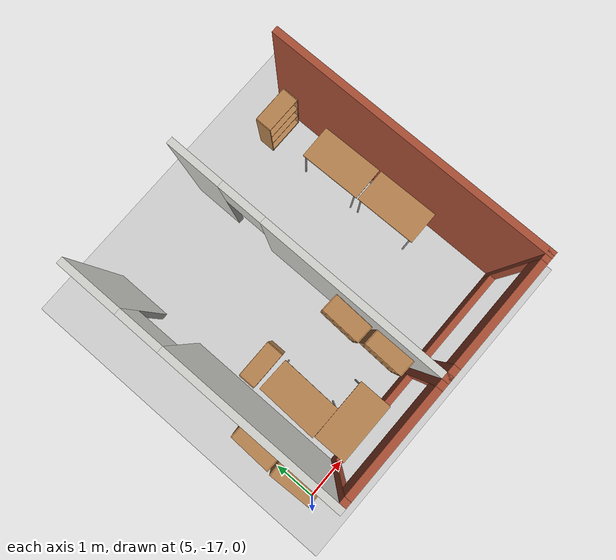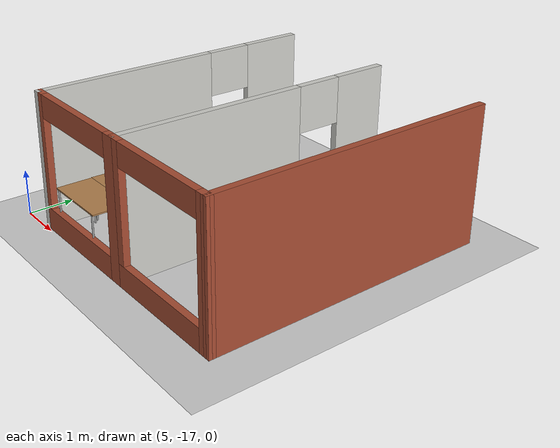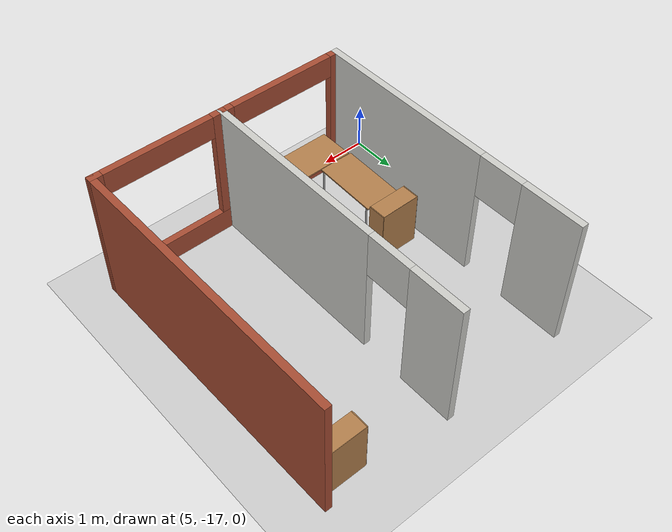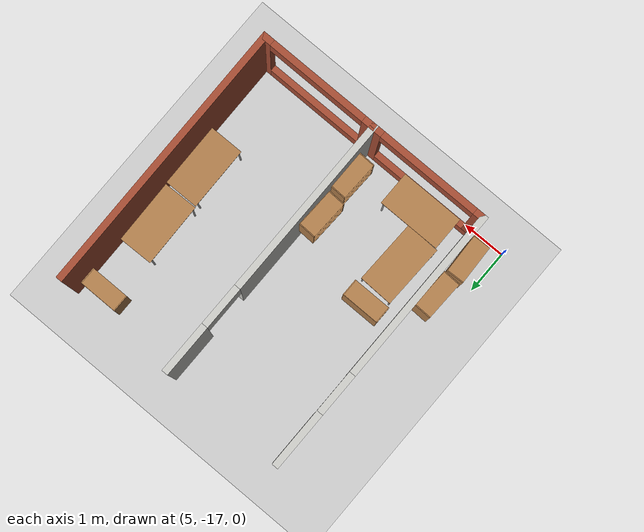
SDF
<sdf version="1.7">
 <world name="default">
  <model name="ground_plane">
   <static>1</static>
   <link name="link">
    <collision name="collision">
     <geometry><plane><normal>0 0 1</normal><size>100 100</size></plane></geometry>
     <surface><friction><ode><mu>100</mu><mu2>50</mu2></ode></friction></surface>
    </collision>
    <visual name="visual">
     <cast_shadows>0</cast_shadows>
     <geometry><plane><normal>0 0 1</normal><size>100 100</size></plane></geometry>
     <material>
      <script><uri>file://media/materials/scripts/gazebo.material</uri><name>Gazebo/Grey</name></script>
     </material>
    </visual>
   </link>
  </model>
  <model name="laboratory_world">
   <pose>0.94037 -7.07852 0 0 -0 0</pose>
   <link name="Wall_26">
    <collision name="Wall_26_Collision">
     <geometry><box><size>6.45317 0.15 3</size></box></geometry>
     <pose>0 0 1.5 0 -0 0</pose>
    </collision>
    <visual name="Wall_26_Visual">
     <pose>0 0 1.5 0 -0 0</pose>
     <geometry><box><size>6.45317 0.15 3</size></box></geometry>
     <material>
      <script><uri>file://media/materials/scripts/gazebo.material</uri><name>Gazebo/Bricks</name></script>
      <ambient>0.760784 0.662745 0.627451 1</ambient>
     </material>
     <meta><layer>0</layer></meta>
    </visual>
    <pose>10.5497 -6.647 0 0 -0 -1.56334</pose>
   </link>
   <link name="Wall_29">
    <pose>9.14822 -9.7985 0 0 -0 3.14159</pose>
    <visual name="Wall_29_Visual_0">
     <pose>-1.36291 0 1.5 0 -0 0</pose>
     <geometry><box><size>0.274173 0.15 3</size></box></geometry>
     <material>
      <script><uri>file://media/materials/scripts/gazebo.material</uri><name>Gazebo/Bricks</name></script>
      <ambient>0.760784 0.662745 0.627451 1</ambient>
     </material>
     <meta><layer>0</layer></meta>
    </visual>
    <collision name="Wall_29_Collision_0">
     <geometry><box><size>0.274173 0.15 3</size></box></geometry>
     <pose>-1.36291 0 1.5 0 -0 0</pose>
    </collision>
    <visual name="Wall_29_Visual_1">
     <pose>0.137086 0 0.25 0 -0 0</pose>
     <geometry><box><size>2.72583 0.15 0.5</size></box></geometry>
     <material>
      <script><uri>file://media/materials/scripts/gazebo.material</uri><name>Gazebo/Bricks</name></script>
      <ambient>0.760784 0.662745 0.627451 1</ambient>
     </material>
     <meta><layer>0</layer></meta>
    </visual>
    <collision name="Wall_29_Collision_1">
     <geometry><box><size>2.72583 0.15 0.5</size></box></geometry>
     <pose>0.137086 0 0.25 0 -0 0</pose>
    </collision>
    <visual name="Wall_29_Visual_2">
     <pose>1.33709 0 1.75 0 -0 0</pose>
     <geometry><box><size>0.325827 0.15 2.5</size></box></geometry>
     <material>
      <script><uri>file://media/materials/scripts/gazebo.material</uri><name>Gazebo/Bricks</name></script>
      <ambient>0.760784 0.662745 0.627451 1</ambient>
     </material>
     <meta><layer>0</layer></meta>
    </visual>
    <collision name="Wall_29_Collision_2">
     <geometry><box><size>0.325827 0.15 2.5</size></box></geometry>
     <pose>1.33709 0 1.75 0 -0 0</pose>
    </collision>
    <visual name="Wall_29_Visual_3">
     <pose>-0.025827 0 2.75 0 -0 0</pose>
     <geometry><box><size>2.4 0.15 0.5</size></box></geometry>
     <material>
      <script><uri>file://media/materials/scripts/gazebo.material</uri><name>Gazebo/Bricks</name></script>
      <ambient>0.760784 0.662745 0.627451 1</ambient>
     </material>
     <meta><layer>0</layer></meta>
    </visual>
    <collision name="Wall_29_Collision_3">
     <geometry><box><size>2.4 0.15 0.5</size></box></geometry>
     <pose>-0.025827 0 2.75 0 -0 0</pose>
    </collision>
   </link>
   <link name="Wall_31">
    <pose>7.72322 -6.6235 0 0 -0 1.5708</pose>
    <visual name="Wall_31_Visual_0">
     <pose>-1.10988 0 1.5 0 -0 0</pose>
     <geometry><box><size>4.28024 0.15 3</size></box></geometry>
     <material>
      <script><uri>file://media/materials/scripts/gazebo.material</uri><name>Gazebo/CeilingTiled</name></script>
      <ambient>0.921569 0.807843 0.615686 1</ambient>
     </material>
     <meta><layer>0</layer></meta>
    </visual>
    <collision name="Wall_31_Collision_0">
     <geometry><box><size>4.28024 0.15 3</size></box></geometry>
     <pose>-1.10988 0 1.5 0 -0 0</pose>
    </collision>
    <visual name="Wall_31_Visual_1">
     <pose>2.64012 0 1.5 0 -0 0</pose>
     <geometry><box><size>1.21976 0.15 3</size></box></geometry>
     <material>
      <script><uri>file://media/materials/scripts/gazebo.material</uri><name>Gazebo/CeilingTiled</name></script>
      <ambient>0.921569 0.807843 0.615686 1</ambient>
     </material>
     <meta><layer>0</layer></meta>
    </visual>
    <collision name="Wall_31_Collision_1">
     <geometry><box><size>1.21976 0.15 3</size></box></geometry>
     <pose>2.64012 0 1.5 0 -0 0</pose>
    </collision>
    <visual name="Wall_31_Visual_2">
     <pose>1.53024 0 2.5 0 -0 0</pose>
     <geometry><box><size>1 0.15 1</size></box></geometry>
     <material>
      <script><uri>file://media/materials/scripts/gazebo.material</uri><name>Gazebo/CeilingTiled</name></script>
      <ambient>0.921569 0.807843 0.615686 1</ambient>
     </material>
     <meta><layer>0</layer></meta>
    </visual>
    <collision name="Wall_31_Collision_2">
     <geometry><box><size>1 0.15 1</size></box></geometry>
     <pose>1.53024 0 2.5 0 -0 0</pose>
    </collision>
   </link>
   <link name="Wall_37">
    <pose>4.87322 -6.6235 0 0 -0 1.5708</pose>
    <visual name="Wall_37_Visual_0">
     <pose>-1.18636 0 1.5 0 -0 0</pose>
     <geometry><box><size>4.12729 0.15 3</size></box></geometry>
     <material>
      <script><uri>file://media/materials/scripts/gazebo.material</uri><name>Gazebo/CeilingTiled</name></script>
      <ambient>0.921569 0.807843 0.615686 1</ambient>
     </material>
     <meta><layer>0</layer></meta>
    </visual>
    <collision name="Wall_37_Collision_0">
     <geometry><box><size>4.12729 0.15 3</size></box></geometry>
     <pose>-1.18636 0 1.5 0 -0 0</pose>
    </collision>
    <visual name="Wall_37_Visual_1">
     <pose>2.56364 0 1.5 0 -0 0</pose>
     <geometry><box><size>1.37271 0.15 3</size></box></geometry>
     <material>
      <script><uri>file://media/materials/scripts/gazebo.material</uri><name>Gazebo/CeilingTiled</name></script>
      <ambient>0.921569 0.807843 0.615686 1</ambient>
     </material>
     <meta><layer>0</layer></meta>
    </visual>
    <collision name="Wall_37_Collision_1">
     <geometry><box><size>1.37271 0.15 3</size></box></geometry>
     <pose>2.56364 0 1.5 0 -0 0</pose>
    </collision>
    <visual name="Wall_37_Visual_2">
     <pose>1.37729 0 2.5 0 -0 0</pose>
     <geometry><box><size>1 0.15 1</size></box></geometry>
     <material>
      <script><uri>file://media/materials/scripts/gazebo.material</uri><name>Gazebo/CeilingTiled</name></script>
      <ambient>0.921569 0.807843 0.615686 1</ambient>
     </material>
     <meta><layer>0</layer></meta>
    </visual>
    <collision name="Wall_37_Collision_2">
     <geometry><box><size>1 0.15 1</size></box></geometry>
     <pose>1.37729 0 2.5 0 -0 0</pose>
    </collision>
   </link>
   <link name="Wall_51">
    <pose>6.29822 -9.7985 0 0 -0 3.14159</pose>
    <visual name="Wall_51_Visual_0">
     <pose>-1.34465 0 1.5 0 -0 0</pose>
     <geometry><box><size>0.310696 0.15 3</size></box></geometry>
     <material>
      <script><uri>file://media/materials/scripts/gazebo.material</uri><name>Gazebo/Bricks</name></script>
      <ambient>0.760784 0.662745 0.627451 1</ambient>
     </material>
     <meta><layer>0</layer></meta>
    </visual>
    <collision name="Wall_51_Collision_0">
     <geometry><box><size>0.310696 0.15 3</size></box></geometry>
     <pose>-1.34465 0 1.5 0 -0 0</pose>
    </collision>
    <visual name="Wall_51_Visual_1">
     <pose>0.155348 0 0.25 0 -0 0</pose>
     <geometry><box><size>2.6893 0.15 0.5</size></box></geometry>
     <material>
      <script><uri>file://media/materials/scripts/gazebo.material</uri><name>Gazebo/Bricks</name></script>
      <ambient>0.760784 0.662745 0.627451 1</ambient>
     </material>
     <meta><layer>0</layer></meta>
    </visual>
    <collision name="Wall_51_Collision_1">
     <geometry><box><size>2.6893 0.15 0.5</size></box></geometry>
     <pose>0.155348 0 0.25 0 -0 0</pose>
    </collision>
    <visual name="Wall_51_Visual_2">
     <pose>1.35535 0 1.75 0 -0 0</pose>
     <geometry><box><size>0.289304 0.15 2.5</size></box></geometry>
     <material>
      <script><uri>file://media/materials/scripts/gazebo.material</uri><name>Gazebo/Bricks</name></script>
      <ambient>0.760784 0.662745 0.627451 1</ambient>
     </material>
     <meta><layer>0</layer></meta>
    </visual>
    <collision name="Wall_51_Collision_2">
     <geometry><box><size>0.289304 0.15 2.5</size></box></geometry>
     <pose>1.35535 0 1.75 0 -0 0</pose>
    </collision>
    <visual name="Wall_51_Visual_3">
     <pose>0.010696 0 2.75 0 -0 0</pose>
     <geometry><box><size>2.4 0.15 0.5</size></box></geometry>
     <material>
      <script><uri>file://media/materials/scripts/gazebo.material</uri><name>Gazebo/Bricks</name></script>
      <ambient>0.760784 0.662745 0.627451 1</ambient>
     </material>
     <meta><layer>0</layer></meta>
    </visual>
    <collision name="Wall_51_Collision_3">
     <geometry><box><size>2.4 0.15 0.5</size></box></geometry>
     <pose>0.010696 0 2.75 0 -0 0</pose>
    </collision>
   </link>
   <static>1</static>
  </model>
  <model name="bookshelf_9">
   <static>1</static>
   <link name="link">
    <inertial><mass>1</mass></inertial>
    <collision name="back">
     <pose>0 0.005 0.6 0 -0 0</pose>
     <geometry><box><size>0.9 0.01 1.2</size></box></geometry>
    </collision>
    <visual name="visual1">
     <pose>0 0.005 0.6 0 -0 0</pose>
     <geometry><box><size>0.9 0.01 1.2</size></box></geometry>
     <material>
      <script><uri>file://media/materials/scripts/gazebo.material</uri><name>Gazebo/Wood</name></script>
     </material>
    </visual>
    <collision name="left_side">
     <pose>0.45 -0.195 0.6 0 -0 0</pose>
     <geometry><box><size>0.02 0.4 1.2</size></box></geometry>
    </collision>
    <visual name="visual2">
     <pose>0.45 -0.195 0.6 0 -0 0</pose>
     <geometry><box><size>0.02 0.4 1.2</size></box></geometry>
     <material>
      <script><uri>file://media/materials/scripts/gazebo.material</uri><name>Gazebo/Wood</name></script>
     </material>
    </visual>
    <collision name="right_side">
     <pose>-0.45 -0.195 0.6 0 -0 0</pose>
     <geometry><box><size>0.02 0.4 1.2</size></box></geometry>
    </collision>
    <visual name="visual3">
     <pose>-0.45 -0.195 0.6 0 -0 0</pose>
     <geometry><box><size>0.02 0.4 1.2</size></box></geometry>
     <material>
      <script><uri>file://media/materials/scripts/gazebo.material</uri><name>Gazebo/Wood</name></script>
     </material>
    </visual>
    <collision name="bottom">
     <pose>0 -0.195 0.03 0 -0 0</pose>
     <geometry><box><size>0.88 0.4 0.06</size></box></geometry>
    </collision>
    <visual name="visual4">
     <pose>0 -0.195 0.03 0 -0 0</pose>
     <geometry><box><size>0.88 0.4 0.06</size></box></geometry>
     <material>
      <script><uri>file://media/materials/scripts/gazebo.material</uri><name>Gazebo/Wood</name></script>
     </material>
    </visual>
    <collision name="top">
     <pose>0 -0.195 1.19 0 -0 0</pose>
     <geometry><box><size>0.88 0.4 0.02</size></box></geometry>
    </collision>
    <visual name="visual5">
     <pose>0 -0.195 1.19 0 -0 0</pose>
     <geometry><box><size>0.88 0.4 0.02</size></box></geometry>
     <material>
      <script><uri>file://media/materials/scripts/gazebo.material</uri><name>Gazebo/Wood</name></script>
     </material>
    </visual>
    <collision name="low_shelf">
     <pose>0 -0.195 0.43 0 -0 0</pose>
     <geometry><box><size>0.88 0.4 0.02</size></box></geometry>
    </collision>
    <visual name="visual6">
     <pose>0 -0.195 0.43 0 -0 0</pose>
     <geometry><box><size>0.88 0.4 0.02</size></box></geometry>
     <material>
      <script><uri>file://media/materials/scripts/gazebo.material</uri><name>Gazebo/Wood</name></script>
     </material>
    </visual>
    <collision name="high_shelf">
     <pose>0 -0.195 0.8 0 -0 0</pose>
     <geometry><box><size>0.88 0.4 0.02</size></box></geometry>
    </collision>
    <visual name="visual7">
     <pose>0 -0.195 0.8 0 -0 0</pose>
     <geometry><box><size>0.88 0.4 0.02</size></box></geometry>
     <material>
      <script><uri>file://media/materials/scripts/gazebo.material</uri><name>Gazebo/Wood</name></script>
     </material>
    </visual>
   </link>
   <pose>10.8854 -10.7295 0 0 -0 0</pose>
  </model>
  <model name="bookshelf_11">
   <static>1</static>
   <link name="link">
    <inertial><mass>1</mass></inertial>
    <collision name="back">
     <pose>0 0.005 0.6 0 -0 0</pose>
     <geometry><box><size>0.9 0.01 1.2</size></box></geometry>
    </collision>
    <visual name="visual1">
     <pose>0 0.005 0.6 0 -0 0</pose>
     <geometry><box><size>0.9 0.01 1.2</size></box></geometry>
     <material>
      <script><uri>file://media/materials/scripts/gazebo.material</uri><name>Gazebo/Wood</name></script>
     </material>
    </visual>
    <collision name="left_side">
     <pose>0.45 -0.195 0.6 0 -0 0</pose>
     <geometry><box><size>0.02 0.4 1.2</size></box></geometry>
    </collision>
    <visual name="visual2">
     <pose>0.45 -0.195 0.6 0 -0 0</pose>
     <geometry><box><size>0.02 0.4 1.2</size></box></geometry>
     <material>
      <script><uri>file://media/materials/scripts/gazebo.material</uri><name>Gazebo/Wood</name></script>
     </material>
    </visual>
    <collision name="right_side">
     <pose>-0.45 -0.195 0.6 0 -0 0</pose>
     <geometry><box><size>0.02 0.4 1.2</size></box></geometry>
    </collision>
    <visual name="visual3">
     <pose>-0.45 -0.195 0.6 0 -0 0</pose>
     <geometry><box><size>0.02 0.4 1.2</size></box></geometry>
     <material>
      <script><uri>file://media/materials/scripts/gazebo.material</uri><name>Gazebo/Wood</name></script>
     </material>
    </visual>
    <collision name="bottom">
     <pose>0 -0.195 0.03 0 -0 0</pose>
     <geometry><box><size>0.88 0.4 0.06</size></box></geometry>
    </collision>
    <visual name="visual4">
     <pose>0 -0.195 0.03 0 -0 0</pose>
     <geometry><box><size>0.88 0.4 0.06</size></box></geometry>
     <material>
      <script><uri>file://media/materials/scripts/gazebo.material</uri><name>Gazebo/Wood</name></script>
     </material>
    </visual>
    <collision name="top">
     <pose>0 -0.195 1.19 0 -0 0</pose>
     <geometry><box><size>0.88 0.4 0.02</size></box></geometry>
    </collision>
    <visual name="visual5">
     <pose>0 -0.195 1.19 0 -0 0</pose>
     <geometry><box><size>0.88 0.4 0.02</size></box></geometry>
     <material>
      <script><uri>file://media/materials/scripts/gazebo.material</uri><name>Gazebo/Wood</name></script>
     </material>
    </visual>
    <collision name="low_shelf">
     <pose>0 -0.195 0.43 0 -0 0</pose>
     <geometry><box><size>0.88 0.4 0.02</size></box></geometry>
    </collision>
    <visual name="visual6">
     <pose>0 -0.195 0.43 0 -0 0</pose>
     <geometry><box><size>0.88 0.4 0.02</size></box></geometry>
     <material>
      <script><uri>file://media/materials/scripts/gazebo.material</uri><name>Gazebo/Wood</name></script>
     </material>
    </visual>
    <collision name="high_shelf">
     <pose>0 -0.195 0.8 0 -0 0</pose>
     <geometry><box><size>0.88 0.4 0.02</size></box></geometry>
    </collision>
    <visual name="visual7">
     <pose>0 -0.195 0.8 0 -0 0</pose>
     <geometry><box><size>0.88 0.4 0.02</size></box></geometry>
     <material>
      <script><uri>file://media/materials/scripts/gazebo.material</uri><name>Gazebo/Wood</name></script>
     </material>
    </visual>
   </link>
   <pose>8.56262 -14.9526 1.06515 0 0 -1.61059</pose>
  </model>
  <model name="bookshelf_12">
   <static>1</static>
   <link name="link">
    <inertial><mass>1</mass></inertial>
    <collision name="back">
     <pose>0 0.005 0.6 0 -0 0</pose>
     <geometry><box><size>0.9 0.01 1.2</size></box></geometry>
    </collision>
    <visual name="visual1">
     <pose>0 0.005 0.6 0 -0 0</pose>
     <geometry><box><size>0.9 0.01 1.2</size></box></geometry>
     <material>
      <script><uri>file://media/materials/scripts/gazebo.material</uri><name>Gazebo/Wood</name></script>
     </material>
    </visual>
    <collision name="left_side">
     <pose>0.45 -0.195 0.6 0 -0 0</pose>
     <geometry><box><size>0.02 0.4 1.2</size></box></geometry>
    </collision>
    <visual name="visual2">
     <pose>0.45 -0.195 0.6 0 -0 0</pose>
     <geometry><box><size>0.02 0.4 1.2</size></box></geometry>
     <material>
      <script><uri>file://media/materials/scripts/gazebo.material</uri><name>Gazebo/Wood</name></script>
     </material>
    </visual>
    <collision name="right_side">
     <pose>-0.45 -0.195 0.6 0 -0 0</pose>
     <geometry><box><size>0.02 0.4 1.2</size></box></geometry>
    </collision>
    <visual name="visual3">
     <pose>-0.45 -0.195 0.6 0 -0 0</pose>
     <geometry><box><size>0.02 0.4 1.2</size></box></geometry>
     <material>
      <script><uri>file://media/materials/scripts/gazebo.material</uri><name>Gazebo/Wood</name></script>
     </material>
    </visual>
    <collision name="bottom">
     <pose>0 -0.195 0.03 0 -0 0</pose>
     <geometry><box><size>0.88 0.4 0.06</size></box></geometry>
    </collision>
    <visual name="visual4">
     <pose>0 -0.195 0.03 0 -0 0</pose>
     <geometry><box><size>0.88 0.4 0.06</size></box></geometry>
     <material>
      <script><uri>file://media/materials/scripts/gazebo.material</uri><name>Gazebo/Wood</name></script>
     </material>
    </visual>
    <collision name="top">
     <pose>0 -0.195 1.19 0 -0 0</pose>
     <geometry><box><size>0.88 0.4 0.02</size></box></geometry>
    </collision>
    <visual name="visual5">
     <pose>0 -0.195 1.19 0 -0 0</pose>
     <geometry><box><size>0.88 0.4 0.02</size></box></geometry>
     <material>
      <script><uri>file://media/materials/scripts/gazebo.material</uri><name>Gazebo/Wood</name></script>
     </material>
    </visual>
    <collision name="low_shelf">
     <pose>0 -0.195 0.43 0 -0 0</pose>
     <geometry><box><size>0.88 0.4 0.02</size></box></geometry>
    </collision>
    <visual name="visual6">
     <pose>0 -0.195 0.43 0 -0 0</pose>
     <geometry><box><size>0.88 0.4 0.02</size></box></geometry>
     <material>
      <script><uri>file://media/materials/scripts/gazebo.material</uri><name>Gazebo/Wood</name></script>
     </material>
    </visual>
    <collision name="high_shelf">
     <pose>0 -0.195 0.8 0 -0 0</pose>
     <geometry><box><size>0.88 0.4 0.02</size></box></geometry>
    </collision>
    <visual name="visual7">
     <pose>0 -0.195 0.8 0 -0 0</pose>
     <geometry><box><size>0.88 0.4 0.02</size></box></geometry>
     <material>
      <script><uri>file://media/materials/scripts/gazebo.material</uri><name>Gazebo/Wood</name></script>
     </material>
    </visual>
   </link>
   <pose>8.61556 -15.9732 0.940735 0 0 -1.60265</pose>
  </model>
  <model name="bookshelf_13">
   <static>1</static>
   <link name="link">
    <inertial><mass>1</mass></inertial>
    <collision name="back">
     <pose>0 0.005 0.6 0 -0 0</pose>
     <geometry><box><size>0.9 0.01 1.2</size></box></geometry>
    </collision>
    <visual name="visual1">
     <pose>0 0.005 0.6 0 -0 0</pose>
     <geometry><box><size>0.9 0.01 1.2</size></box></geometry>
     <material>
      <script><uri>file://media/materials/scripts/gazebo.material</uri><name>Gazebo/Wood</name></script>
     </material>
    </visual>
    <collision name="left_side">
     <pose>0.45 -0.195 0.6 0 -0 0</pose>
     <geometry><box><size>0.02 0.4 1.2</size></box></geometry>
    </collision>
    <visual name="visual2">
     <pose>0.45 -0.195 0.6 0 -0 0</pose>
     <geometry><box><size>0.02 0.4 1.2</size></box></geometry>
     <material>
      <script><uri>file://media/materials/scripts/gazebo.material</uri><name>Gazebo/Wood</name></script>
     </material>
    </visual>
    <collision name="right_side">
     <pose>-0.45 -0.195 0.6 0 -0 0</pose>
     <geometry><box><size>0.02 0.4 1.2</size></box></geometry>
    </collision>
    <visual name="visual3">
     <pose>-0.45 -0.195 0.6 0 -0 0</pose>
     <geometry><box><size>0.02 0.4 1.2</size></box></geometry>
     <material>
      <script><uri>file://media/materials/scripts/gazebo.material</uri><name>Gazebo/Wood</name></script>
     </material>
    </visual>
    <collision name="bottom">
     <pose>0 -0.195 0.03 0 -0 0</pose>
     <geometry><box><size>0.88 0.4 0.06</size></box></geometry>
    </collision>
    <visual name="visual4">
     <pose>0 -0.195 0.03 0 -0 0</pose>
     <geometry><box><size>0.88 0.4 0.06</size></box></geometry>
     <material>
      <script><uri>file://media/materials/scripts/gazebo.material</uri><name>Gazebo/Wood</name></script>
     </material>
    </visual>
    <collision name="top">
     <pose>0 -0.195 1.19 0 -0 0</pose>
     <geometry><box><size>0.88 0.4 0.02</size></box></geometry>
    </collision>
    <visual name="visual5">
     <pose>0 -0.195 1.19 0 -0 0</pose>
     <geometry><box><size>0.88 0.4 0.02</size></box></geometry>
     <material>
      <script><uri>file://media/materials/scripts/gazebo.material</uri><name>Gazebo/Wood</name></script>
     </material>
    </visual>
    <collision name="low_shelf">
     <pose>0 -0.195 0.43 0 -0 0</pose>
     <geometry><box><size>0.88 0.4 0.02</size></box></geometry>
    </collision>
    <visual name="visual6">
     <pose>0 -0.195 0.43 0 -0 0</pose>
     <geometry><box><size>0.88 0.4 0.02</size></box></geometry>
     <material>
      <script><uri>file://media/materials/scripts/gazebo.material</uri><name>Gazebo/Wood</name></script>
     </material>
    </visual>
    <collision name="high_shelf">
     <pose>0 -0.195 0.8 0 -0 0</pose>
     <geometry><box><size>0.88 0.4 0.02</size></box></geometry>
    </collision>
    <visual name="visual7">
     <pose>0 -0.195 0.8 0 -0 0</pose>
     <geometry><box><size>0.88 0.4 0.02</size></box></geometry>
     <material>
      <script><uri>file://media/materials/scripts/gazebo.material</uri><name>Gazebo/Wood</name></script>
     </material>
    </visual>
   </link>
   <pose>5.6997 -16.151 1.08282 0 0 -1.5312</pose>
  </model>
  <model name="table_11">
   <static>1</static>
   <link name="link">
    <collision name="surface">
     <pose>0 0 1 0 -0 0</pose>
     <geometry><box><size>1.5 0.8 0.03</size></box></geometry>
     <surface><friction><ode><mu>0.6</mu><mu2>0.6</mu2></ode></friction></surface>
    </collision>
    <visual name="visual1">
     <pose>0 0 1 0 -0 0</pose>
     <geometry><box><size>1.5 0.8 0.03</size></box></geometry>
     <material>
      <script><uri>file://media/materials/scripts/gazebo.material</uri><name>Gazebo/Wood</name></script>
     </material>
    </visual>
    <collision name="front_left_leg">
     <pose>0.68 0.38 0.5 0 -0 0</pose>
     <geometry><cylinder><radius>0.02</radius><length>1</length></cylinder></geometry>
    </collision>
    <visual name="front_left_leg">
     <pose>0.68 0.38 0.5 0 -0 0</pose>
     <geometry><cylinder><radius>0.02</radius><length>1</length></cylinder></geometry>
     <material>
      <script><uri>file://media/materials/scripts/gazebo.material</uri><name>Gazebo/Grey</name></script>
     </material>
    </visual>
    <collision name="front_right_leg">
     <pose>0.68 -0.38 0.5 0 -0 0</pose>
     <geometry><cylinder><radius>0.02</radius><length>1</length></cylinder></geometry>
    </collision>
    <visual name="front_right_leg">
     <pose>0.68 -0.38 0.5 0 -0 0</pose>
     <geometry><cylinder><radius>0.02</radius><length>1</length></cylinder></geometry>
     <material>
      <script><uri>file://media/materials/scripts/gazebo.material</uri><name>Gazebo/Grey</name></script>
     </material>
    </visual>
    <collision name="back_right_leg">
     <pose>-0.68 -0.38 0.5 0 -0 0</pose>
     <geometry><cylinder><radius>0.02</radius><length>1</length></cylinder></geometry>
    </collision>
    <visual name="back_right_leg">
     <pose>-0.68 -0.38 0.5 0 -0 0</pose>
     <geometry><cylinder><radius>0.02</radius><length>1</length></cylinder></geometry>
     <material>
      <script><uri>file://media/materials/scripts/gazebo.material</uri><name>Gazebo/Grey</name></script>
     </material>
    </visual>
    <collision name="back_left_leg">
     <pose>-0.68 0.38 0.5 0 -0 0</pose>
     <geometry><cylinder><radius>0.02</radius><length>1</length></cylinder></geometry>
    </collision>
    <visual name="back_left_leg">
     <pose>-0.68 0.38 0.5 0 -0 0</pose>
     <geometry><cylinder><radius>0.02</radius><length>1</length></cylinder></geometry>
     <material>
      <script><uri>file://media/materials/scripts/gazebo.material</uri><name>Gazebo/Grey</name></script>
     </material>
    </visual>
   </link>
   <pose>6.90735 -16.4643 0 0 -0 0</pose>
  </model>
  <model name="table_12">
   <static>1</static>
   <link name="link">
    <collision name="surface">
     <pose>0 0 1 0 -0 0</pose>
     <geometry><box><size>1.5 0.8 0.03</size></box></geometry>
     <surface><friction><ode><mu>0.6</mu><mu2>0.6</mu2></ode></friction></surface>
    </collision>
    <visual name="visual1">
     <pose>0 0 1 0 -0 0</pose>
     <geometry><box><size>1.5 0.8 0.03</size></box></geometry>
     <material>
      <script><uri>file://media/materials/scripts/gazebo.material</uri><name>Gazebo/Wood</name></script>
     </material>
    </visual>
    <collision name="front_left_leg">
     <pose>0.68 0.38 0.5 0 -0 0</pose>
     <geometry><cylinder><radius>0.02</radius><length>1</length></cylinder></geometry>
    </collision>
    <visual name="front_left_leg">
     <pose>0.68 0.38 0.5 0 -0 0</pose>
     <geometry><cylinder><radius>0.02</radius><length>1</length></cylinder></geometry>
     <material>
      <script><uri>file://media/materials/scripts/gazebo.material</uri><name>Gazebo/Grey</name></script>
     </material>
    </visual>
    <collision name="front_right_leg">
     <pose>0.68 -0.38 0.5 0 -0 0</pose>
     <geometry><cylinder><radius>0.02</radius><length>1</length></cylinder></geometry>
    </collision>
    <visual name="front_right_leg">
     <pose>0.68 -0.38 0.5 0 -0 0</pose>
     <geometry><cylinder><radius>0.02</radius><length>1</length></cylinder></geometry>
     <material>
      <script><uri>file://media/materials/scripts/gazebo.material</uri><name>Gazebo/Grey</name></script>
     </material>
    </visual>
    <collision name="back_right_leg">
     <pose>-0.68 -0.38 0.5 0 -0 0</pose>
     <geometry><cylinder><radius>0.02</radius><length>1</length></cylinder></geometry>
    </collision>
    <visual name="back_right_leg">
     <pose>-0.68 -0.38 0.5 0 -0 0</pose>
     <geometry><cylinder><radius>0.02</radius><length>1</length></cylinder></geometry>
     <material>
      <script><uri>file://media/materials/scripts/gazebo.material</uri><name>Gazebo/Grey</name></script>
     </material>
    </visual>
    <collision name="back_left_leg">
     <pose>-0.68 0.38 0.5 0 -0 0</pose>
     <geometry><cylinder><radius>0.02</radius><length>1</length></cylinder></geometry>
    </collision>
    <visual name="back_left_leg">
     <pose>-0.68 0.38 0.5 0 -0 0</pose>
     <geometry><cylinder><radius>0.02</radius><length>1</length></cylinder></geometry>
     <material>
      <script><uri>file://media/materials/scripts/gazebo.material</uri><name>Gazebo/Grey</name></script>
     </material>
    </visual>
   </link>
   <pose>10.9498 -12.7103 0 0 0 -1.55008</pose>
  </model>
  <model name="table_13">
   <static>1</static>
   <link name="link">
    <collision name="surface">
     <pose>0 0 1 0 -0 0</pose>
     <geometry><box><size>1.5 0.8 0.03</size></box></geometry>
     <surface><friction><ode><mu>0.6</mu><mu2>0.6</mu2></ode></friction></surface>
    </collision>
    <visual name="visual1">
     <pose>0 0 1 0 -0 0</pose>
     <geometry><box><size>1.5 0.8 0.03</size></box></geometry>
     <material>
      <script><uri>file://media/materials/scripts/gazebo.material</uri><name>Gazebo/Wood</name></script>
     </material>
    </visual>
    <collision name="front_left_leg">
     <pose>0.68 0.38 0.5 0 -0 0</pose>
     <geometry><cylinder><radius>0.02</radius><length>1</length></cylinder></geometry>
    </collision>
    <visual name="front_left_leg">
     <pose>0.68 0.38 0.5 0 -0 0</pose>
     <geometry><cylinder><radius>0.02</radius><length>1</length></cylinder></geometry>
     <material>
      <script><uri>file://media/materials/scripts/gazebo.material</uri><name>Gazebo/Grey</name></script>
     </material>
    </visual>
    <collision name="front_right_leg">
     <pose>0.68 -0.38 0.5 0 -0 0</pose>
     <geometry><cylinder><radius>0.02</radius><length>1</length></cylinder></geometry>
    </collision>
    <visual name="front_right_leg">
     <pose>0.68 -0.38 0.5 0 -0 0</pose>
     <geometry><cylinder><radius>0.02</radius><length>1</length></cylinder></geometry>
     <material>
      <script><uri>file://media/materials/scripts/gazebo.material</uri><name>Gazebo/Grey</name></script>
     </material>
    </visual>
    <collision name="back_right_leg">
     <pose>-0.68 -0.38 0.5 0 -0 0</pose>
     <geometry><cylinder><radius>0.02</radius><length>1</length></cylinder></geometry>
    </collision>
    <visual name="back_right_leg">
     <pose>-0.68 -0.38 0.5 0 -0 0</pose>
     <geometry><cylinder><radius>0.02</radius><length>1</length></cylinder></geometry>
     <material>
      <script><uri>file://media/materials/scripts/gazebo.material</uri><name>Gazebo/Grey</name></script>
     </material>
    </visual>
    <collision name="back_left_leg">
     <pose>-0.68 0.38 0.5 0 -0 0</pose>
     <geometry><cylinder><radius>0.02</radius><length>1</length></cylinder></geometry>
    </collision>
    <visual name="back_left_leg">
     <pose>-0.68 0.38 0.5 0 -0 0</pose>
     <geometry><cylinder><radius>0.02</radius><length>1</length></cylinder></geometry>
     <material>
      <script><uri>file://media/materials/scripts/gazebo.material</uri><name>Gazebo/Grey</name></script>
     </material>
    </visual>
   </link>
   <pose>10.9909 -14.2785 -0.002685 0.002299 -0.037706 -1.56387</pose>
  </model>
  <model name="table_15">
   <static>1</static>
   <link name="link">
    <collision name="surface">
     <pose>0 0 1 0 -0 0</pose>
     <geometry><box><size>1.5 0.8 0.03</size></box></geometry>
     <surface><friction><ode><mu>0.6</mu><mu2>0.6</mu2></ode></friction></surface>
    </collision>
    <visual name="visual1">
     <pose>0 0 1 0 -0 0</pose>
     <geometry><box><size>1.5 0.8 0.03</size></box></geometry>
     <material>
      <script><uri>file://media/materials/scripts/gazebo.material</uri><name>Gazebo/Wood</name></script>
     </material>
    </visual>
    <collision name="front_left_leg">
     <pose>0.68 0.38 0.5 0 -0 0</pose>
     <geometry><cylinder><radius>0.02</radius><length>1</length></cylinder></geometry>
    </collision>
    <visual name="front_left_leg">
     <pose>0.68 0.38 0.5 0 -0 0</pose>
     <geometry><cylinder><radius>0.02</radius><length>1</length></cylinder></geometry>
     <material>
      <script><uri>file://media/materials/scripts/gazebo.material</uri><name>Gazebo/Grey</name></script>
     </material>
    </visual>
    <collision name="front_right_leg">
     <pose>0.68 -0.38 0.5 0 -0 0</pose>
     <geometry><cylinder><radius>0.02</radius><length>1</length></cylinder></geometry>
    </collision>
    <visual name="front_right_leg">
     <pose>0.68 -0.38 0.5 0 -0 0</pose>
     <geometry><cylinder><radius>0.02</radius><length>1</length></cylinder></geometry>
     <material>
      <script><uri>file://media/materials/scripts/gazebo.material</uri><name>Gazebo/Grey</name></script>
     </material>
    </visual>
    <collision name="back_right_leg">
     <pose>-0.68 -0.38 0.5 0 -0 0</pose>
     <geometry><cylinder><radius>0.02</radius><length>1</length></cylinder></geometry>
    </collision>
    <visual name="back_right_leg">
     <pose>-0.68 -0.38 0.5 0 -0 0</pose>
     <geometry><cylinder><radius>0.02</radius><length>1</length></cylinder></geometry>
     <material>
      <script><uri>file://media/materials/scripts/gazebo.material</uri><name>Gazebo/Grey</name></script>
     </material>
    </visual>
    <collision name="back_left_leg">
     <pose>-0.68 0.38 0.5 0 -0 0</pose>
     <geometry><cylinder><radius>0.02</radius><length>1</length></cylinder></geometry>
    </collision>
    <visual name="back_left_leg">
     <pose>-0.68 0.38 0.5 0 -0 0</pose>
     <geometry><cylinder><radius>0.02</radius><length>1</length></cylinder></geometry>
     <material>
      <script><uri>file://media/materials/scripts/gazebo.material</uri><name>Gazebo/Grey</name></script>
     </material>
    </visual>
   </link>
   <pose>6.53101 -15.3151 -0.016599 0 -0 1.54151</pose>
  </model>
  <model name="bookshelf_17">
   <static>1</static>
   <link name="link">
    <inertial><mass>1</mass></inertial>
    <collision name="back">
     <pose>0 0.005 0.6 0 -0 0</pose>
     <geometry><box><size>0.9 0.01 1.2</size></box></geometry>
    </collision>
    <visual name="visual1">
     <pose>0 0.005 0.6 0 -0 0</pose>
     <geometry><box><size>0.9 0.01 1.2</size></box></geometry>
     <material>
      <script><uri>file://media/materials/scripts/gazebo.material</uri><name>Gazebo/Wood</name></script>
     </material>
    </visual>
    <collision name="left_side">
     <pose>0.45 -0.195 0.6 0 -0 0</pose>
     <geometry><box><size>0.02 0.4 1.2</size></box></geometry>
    </collision>
    <visual name="visual2">
     <pose>0.45 -0.195 0.6 0 -0 0</pose>
     <geometry><box><size>0.02 0.4 1.2</size></box></geometry>
     <material>
      <script><uri>file://media/materials/scripts/gazebo.material</uri><name>Gazebo/Wood</name></script>
     </material>
    </visual>
    <collision name="right_side">
     <pose>-0.45 -0.195 0.6 0 -0 0</pose>
     <geometry><box><size>0.02 0.4 1.2</size></box></geometry>
    </collision>
    <visual name="visual3">
     <pose>-0.45 -0.195 0.6 0 -0 0</pose>
     <geometry><box><size>0.02 0.4 1.2</size></box></geometry>
     <material>
      <script><uri>file://media/materials/scripts/gazebo.material</uri><name>Gazebo/Wood</name></script>
     </material>
    </visual>
    <collision name="bottom">
     <pose>0 -0.195 0.03 0 -0 0</pose>
     <geometry><box><size>0.88 0.4 0.06</size></box></geometry>
    </collision>
    <visual name="visual4">
     <pose>0 -0.195 0.03 0 -0 0</pose>
     <geometry><box><size>0.88 0.4 0.06</size></box></geometry>
     <material>
      <script><uri>file://media/materials/scripts/gazebo.material</uri><name>Gazebo/Wood</name></script>
     </material>
    </visual>
    <collision name="top">
     <pose>0 -0.195 1.19 0 -0 0</pose>
     <geometry><box><size>0.88 0.4 0.02</size></box></geometry>
    </collision>
    <visual name="visual5">
     <pose>0 -0.195 1.19 0 -0 0</pose>
     <geometry><box><size>0.88 0.4 0.02</size></box></geometry>
     <material>
      <script><uri>file://media/materials/scripts/gazebo.material</uri><name>Gazebo/Wood</name></script>
     </material>
    </visual>
    <collision name="low_shelf">
     <pose>0 -0.195 0.43 0 -0 0</pose>
     <geometry><box><size>0.88 0.4 0.02</size></box></geometry>
    </collision>
    <visual name="visual6">
     <pose>0 -0.195 0.43 0 -0 0</pose>
     <geometry><box><size>0.88 0.4 0.02</size></box></geometry>
     <material>
      <script><uri>file://media/materials/scripts/gazebo.material</uri><name>Gazebo/Wood</name></script>
     </material>
    </visual>
    <collision name="high_shelf">
     <pose>0 -0.195 0.8 0 -0 0</pose>
     <geometry><box><size>0.88 0.4 0.02</size></box></geometry>
    </collision>
    <visual name="visual7">
     <pose>0 -0.195 0.8 0 -0 0</pose>
     <geometry><box><size>0.88 0.4 0.02</size></box></geometry>
     <material>
      <script><uri>file://media/materials/scripts/gazebo.material</uri><name>Gazebo/Wood</name></script>
     </material>
    </visual>
   </link>
   <pose>5.72699 -15.196 1.1221 0 0 -1.59902</pose>
  </model>
  <model name="bookshelf_18">
   <static>1</static>
   <link name="link">
    <inertial><mass>1</mass></inertial>
    <collision name="back">
     <pose>0 0.005 0.6 0 -0 0</pose>
     <geometry><box><size>0.9 0.01 1.2</size></box></geometry>
    </collision>
    <visual name="visual1">
     <pose>0 0.005 0.6 0 -0 0</pose>
     <geometry><box><size>0.9 0.01 1.2</size></box></geometry>
     <material>
      <script><uri>file://media/materials/scripts/gazebo.material</uri><name>Gazebo/Wood</name></script>
     </material>
    </visual>
    <collision name="left_side">
     <pose>0.45 -0.195 0.6 0 -0 0</pose>
     <geometry><box><size>0.02 0.4 1.2</size></box></geometry>
    </collision>
    <visual name="visual2">
     <pose>0.45 -0.195 0.6 0 -0 0</pose>
     <geometry><box><size>0.02 0.4 1.2</size></box></geometry>
     <material>
      <script><uri>file://media/materials/scripts/gazebo.material</uri><name>Gazebo/Wood</name></script>
     </material>
    </visual>
    <collision name="right_side">
     <pose>-0.45 -0.195 0.6 0 -0 0</pose>
     <geometry><box><size>0.02 0.4 1.2</size></box></geometry>
    </collision>
    <visual name="visual3">
     <pose>-0.45 -0.195 0.6 0 -0 0</pose>
     <geometry><box><size>0.02 0.4 1.2</size></box></geometry>
     <material>
      <script><uri>file://media/materials/scripts/gazebo.material</uri><name>Gazebo/Wood</name></script>
     </material>
    </visual>
    <collision name="bottom">
     <pose>0 -0.195 0.03 0 -0 0</pose>
     <geometry><box><size>0.88 0.4 0.06</size></box></geometry>
    </collision>
    <visual name="visual4">
     <pose>0 -0.195 0.03 0 -0 0</pose>
     <geometry><box><size>0.88 0.4 0.06</size></box></geometry>
     <material>
      <script><uri>file://media/materials/scripts/gazebo.material</uri><name>Gazebo/Wood</name></script>
     </material>
    </visual>
    <collision name="top">
     <pose>0 -0.195 1.19 0 -0 0</pose>
     <geometry><box><size>0.88 0.4 0.02</size></box></geometry>
    </collision>
    <visual name="visual5">
     <pose>0 -0.195 1.19 0 -0 0</pose>
     <geometry><box><size>0.88 0.4 0.02</size></box></geometry>
     <material>
      <script><uri>file://media/materials/scripts/gazebo.material</uri><name>Gazebo/Wood</name></script>
     </material>
    </visual>
    <collision name="low_shelf">
     <pose>0 -0.195 0.43 0 -0 0</pose>
     <geometry><box><size>0.88 0.4 0.02</size></box></geometry>
    </collision>
    <visual name="visual6">
     <pose>0 -0.195 0.43 0 -0 0</pose>
     <geometry><box><size>0.88 0.4 0.02</size></box></geometry>
     <material>
      <script><uri>file://media/materials/scripts/gazebo.material</uri><name>Gazebo/Wood</name></script>
     </material>
    </visual>
    <collision name="high_shelf">
     <pose>0 -0.195 0.8 0 -0 0</pose>
     <geometry><box><size>0.88 0.4 0.02</size></box></geometry>
    </collision>
    <visual name="visual7">
     <pose>0 -0.195 0.8 0 -0 0</pose>
     <geometry><box><size>0.88 0.4 0.02</size></box></geometry>
     <material>
      <script><uri>file://media/materials/scripts/gazebo.material</uri><name>Gazebo/Wood</name></script>
     </material>
    </visual>
   </link>
   <pose>6.56086 -14.0639 0 0 -0 0</pose>
  </model>
 </world>
</sdf>
